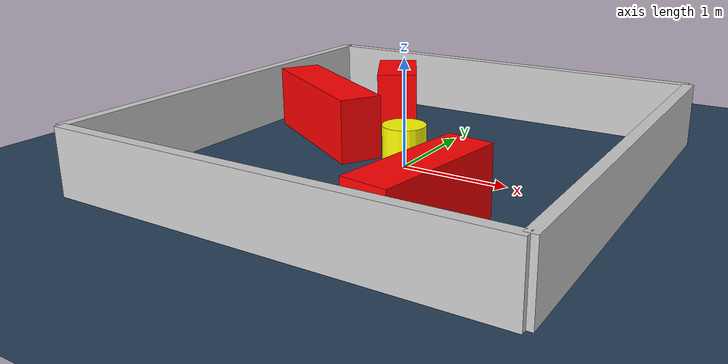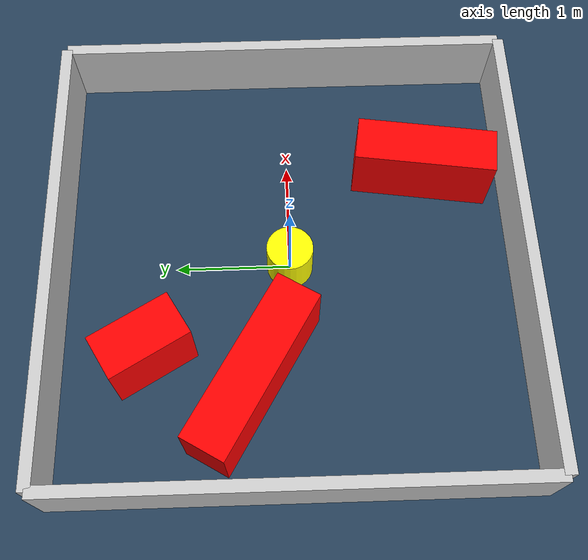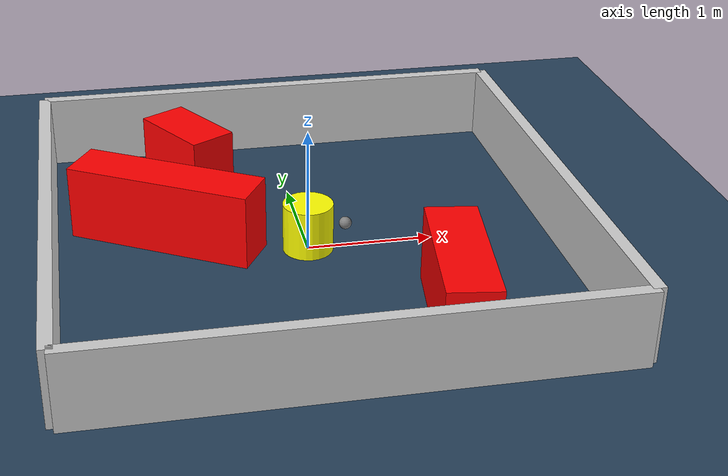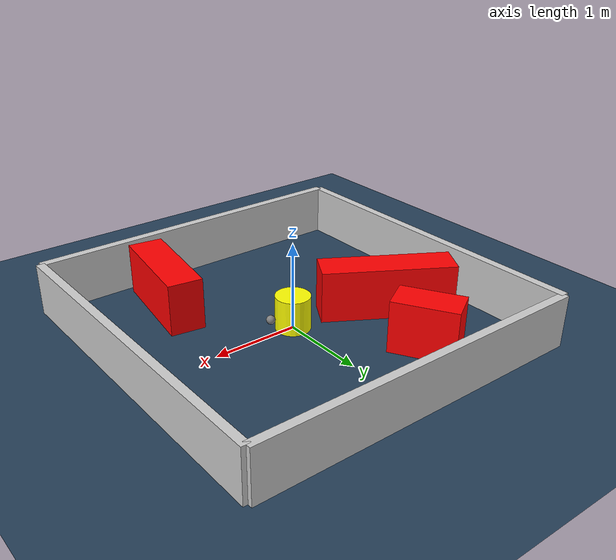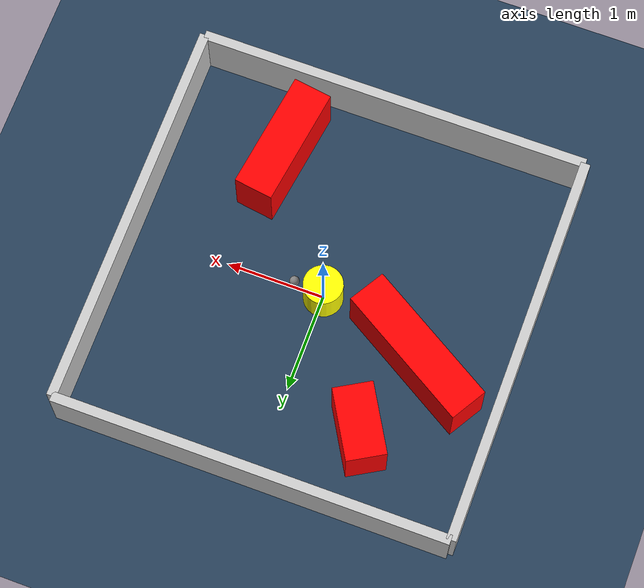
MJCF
<?xml version="1.0" ?>
<mujoco model="generated_environment">
  <option timestep="0.01" integrator="RK4" cone="elliptic"/>
  <default>
    <geom density="1"/>
  </default>
  <asset>
    <texture builtin="gradient" height="3072" rgb1="0.3 0.5 0.7" rgb2="0 0 0" type="skybox" width="512"/>
    <texture builtin="checker" height="300" mark="edge" markrgb="0.8 0.8 0.8" name="groundplane" rgb1="0.2 0.3 0.4" rgb2="0.1 0.2 0.3" type="2d" width="300"/>
    <material name="groundplane" reflectance="0.2" texrepeat="5 5" texture="groundplane" texuniform="true"/>
    <material name="robot" rgba="0.0 1.0 0.0 1"/>
  </asset>
  <worldbody>
    <light dir="0 0 -1" directional="true" pos="0 0 1.5"/>
    <geom condim="4" friction="1.0 0.005 0.001" material="groundplane" name="floor" size="0 0 0.05" type="plane"/>
    <body name="walls">
      <geom name="wall_1" condim="4" pos="-2.0 0.0 0.3" rgba="0.800000011920929 0.800000011920929 0.800000011920929 1.0" size="0.05 2.0 0.3" type="box"/>
      <geom name="wall_2" condim="4" pos="2.0 0.0 0.3" rgba="0.800000011920929 0.800000011920929 0.800000011920929 1.0" size="0.05 2.0 0.3" type="box"/>
      <geom name="wall_3" condim="4" pos="0.0 -2.0 0.3" rgba="0.800000011920929 0.800000011920929 0.800000011920929 1.0" size="2.0 0.05 0.3" type="box"/>
      <geom name="wall_4" condim="4" pos="0.0 2.0 0.3" rgba="0.800000011920929 0.800000011920929 0.800000011920929 1.0" size="2.0 0.05 0.3" type="box"/>
    </body>
    <body name="robot">
      <joint name="joint_x" type="slide" pos="0 0 0" axis="1 0 0"/>
      <joint name="joint_y" type="slide" pos="0 0 0" axis="0 1 0"/>
      <geom name="robot" type="sphere" pos="0.3 0.0 0.2" size="0.05" mass="5." friction="1.0 0.005 0.0001" condim="4" rgba="0.5 0.5 0.5 1.0"/>
      <site name="sensor_ball"/>
    </body>
    <body name="obstacle_movable_1">
      <geom name="obstacle_movable_1" condim="4" pos="0.0 0.0 0.2" euler="0 0 0.0" friction="1.0 0.005 0.001" rgba="1.0 1.0 0.0 1.0" size="0.2 0.2 0.0" type="cylinder" mass="0.1"/>
      <joint type="free"/>
    </body>
    <body name="obstacle_2_static">
      <geom name="obstacle_2_static" condim="4" pos="-0.8151027353964305 1.2189197474940958 0.3" euler="0 0 300.48381084639686" friction="1.0 0.005 0.001" rgba="1 0 0 1" size="0.363957366644576 0.2 0.3" type="box"/>
    </body>
    <body name="obstacle_3_static">
      <geom name="obstacle_3_static" condim="4" pos="0.8735262624414402 -1.2267206127621644 0.3" euler="0 0 261.76780022336806" friction="1.0 0.005 0.001" rgba="1 0 0 1" size="0.6115817152532195 0.2 0.3" type="box"/>
    </body>
    <body name="obstacle_4_static">
      <geom name="obstacle_4_static" condim="4" pos="-1.0752923520928797 0.32660335279992636 0.3" euler="0 0 149.30121374674414" friction="1.0 0.005 0.001" rgba="1 0 0 1" size="0.7628082478860609 0.2 0.3" type="box"/>
    </body>
  </worldbody>
  <actuator>
    <motor name="actuator_x" joint="joint_x" gear="1" ctrlrange="-1 1"/>
    <motor name="actuator_y" joint="joint_y" gear="1" ctrlrange="-1 1"/>
  </actuator>
</mujoco>
